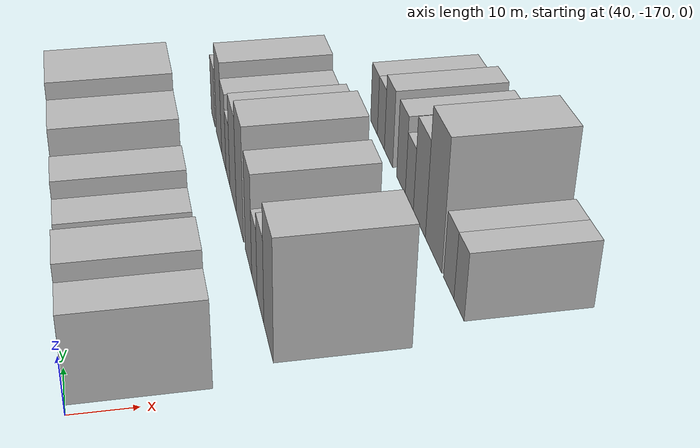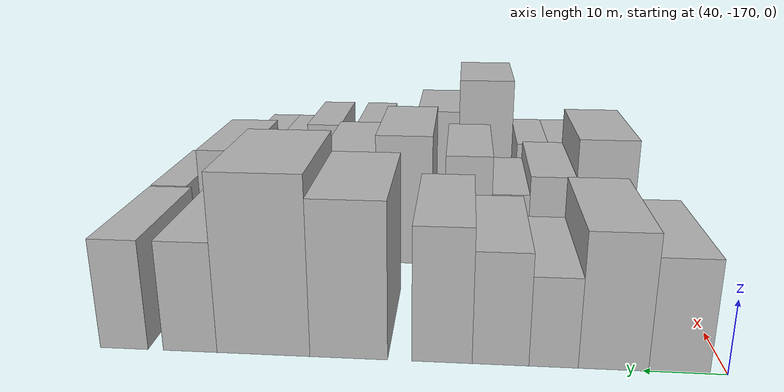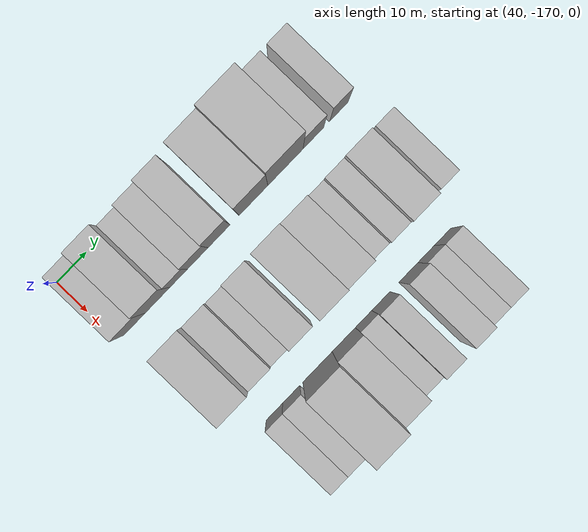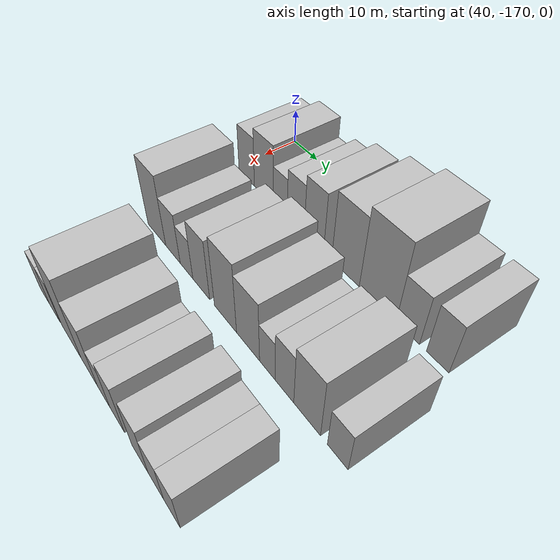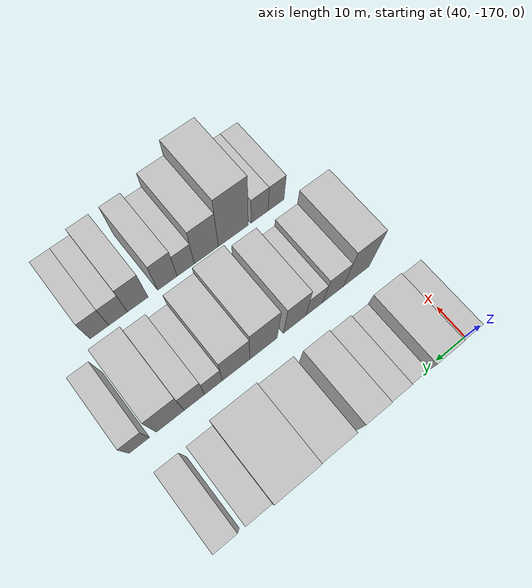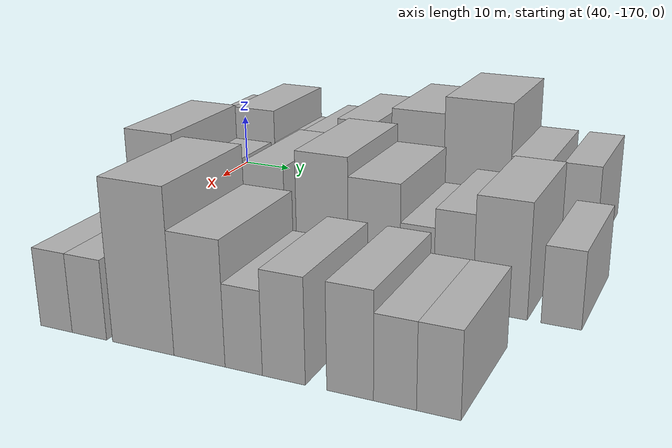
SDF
<sdf version="1.6">
 <world name="default">
  <model name="building_20">
   <static>1</static>
   <pose>50.0000 -164.2807 0 0.000000 0.000000 0.000000</pose>
   <link name="link">
    <pose>0 0 7.50 0 0 0</pose>
    <collision name="collision"><geometry><box><size>20.0000 7.2771 15.0000</size></box></geometry></collision>
    <visual name="visual">
     <cast_shadows>0</cast_shadows>
     <geometry><box><size>20.0000 7.2771 15.0000</size></box></geometry>
     <material>
      <script>
       <uri>model://HANNAS_wall/materials/scripts</uri>
       <uri>model://HANNAS_wall/materials/textures</uri>
       <name>vrc/HANNAS_wall</name>
      </script>
     </material>
    </visual>
   </link>
  </model>
  <model name="building_21">
   <static>1</static>
   <pose>50.0000 -156.4418 0 0.000000 0.000000 0.000000</pose>
   <link name="link">
    <pose>0 0 9.00 0 0 0</pose>
    <collision name="collision"><geometry><box><size>20.0000 8.4006 18.0000</size></box></geometry></collision>
    <visual name="visual">
     <cast_shadows>0</cast_shadows>
     <geometry><box><size>20.0000 8.4006 18.0000</size></box></geometry>
     <material>
      <script>
       <uri>model://HANNAS_wall/materials/scripts</uri>
       <uri>model://HANNAS_wall/materials/textures</uri>
       <name>vrc/HANNAS_wall</name>
      </script>
     </material>
    </visual>
   </link>
  </model>
  <model name="building_22">
   <static>1</static>
   <pose>50.0000 -149.2605 0 0.000000 0.000000 0.000000</pose>
   <link name="link">
    <pose>0 0 6.00 0 0 0</pose>
    <collision name="collision"><geometry><box><size>20.0000 5.9621 12.0000</size></box></geometry></collision>
    <visual name="visual">
     <cast_shadows>0</cast_shadows>
     <geometry><box><size>20.0000 5.9621 12.0000</size></box></geometry>
     <material>
      <script>
       <uri>model://HANNAS_wall/materials/scripts</uri>
       <uri>model://HANNAS_wall/materials/textures</uri>
       <name>vrc/HANNAS_wall</name>
      </script>
     </material>
    </visual>
   </link>
  </model>
  <model name="building_23">
   <static>1</static>
   <pose>50.0000 -142.8116 0 0.000000 0.000000 0.000000</pose>
   <link name="link">
    <pose>0 0 7.50 0 0 0</pose>
    <collision name="collision"><geometry><box><size>20.0000 6.9357 15.0000</size></box></geometry></collision>
    <visual name="visual">
     <cast_shadows>0</cast_shadows>
     <geometry><box><size>20.0000 6.9357 15.0000</size></box></geometry>
     <material>
      <script>
       <uri>model://HANNAS_wall/materials/scripts</uri>
       <uri>model://HANNAS_wall/materials/textures</uri>
       <name>vrc/HANNAS_wall</name>
      </script>
     </material>
    </visual>
   </link>
  </model>
  <model name="building_24">
   <static>1</static>
   <pose>50.0000 -135.6105 0 0.000000 0.000000 0.000000</pose>
   <link name="link">
    <pose>0 0 9.00 0 0 0</pose>
    <collision name="collision"><geometry><box><size>20.0000 7.4665 18.0000</size></box></geometry></collision>
    <visual name="visual">
     <cast_shadows>0</cast_shadows>
     <geometry><box><size>20.0000 7.4665 18.0000</size></box></geometry>
     <material>
      <script>
       <uri>model://HANNAS_wall/materials/scripts</uri>
       <uri>model://HANNAS_wall/materials/textures</uri>
       <name>vrc/HANNAS_wall</name>
      </script>
     </material>
    </visual>
   </link>
  </model>
  <model name="building_25">
   <static>1</static>
   <pose>50.0000 -123.9901 0 0.000000 0.000000 0.000000</pose>
   <link name="link">
    <pose>0 0 10.50 0 0 0</pose>
    <collision name="collision"><geometry><box><size>20.0000 9.7743 21.0000</size></box></geometry></collision>
    <visual name="visual">
     <cast_shadows>0</cast_shadows>
     <geometry><box><size>20.0000 9.7743 21.0000</size></box></geometry>
     <material>
      <script>
       <uri>model://HANNAS_wall/materials/scripts</uri>
       <uri>model://HANNAS_wall/materials/textures</uri>
       <name>vrc/HANNAS_wall</name>
      </script>
     </material>
    </visual>
   </link>
  </model>
  <model name="building_26">
   <static>1</static>
   <pose>50.0000 -113.1574 0 0.000000 0.000000 0.000000</pose>
   <link name="link">
    <pose>0 0 12.00 0 0 0</pose>
    <collision name="collision"><geometry><box><size>20.0000 11.8910 24.0000</size></box></geometry></collision>
    <visual name="visual">
     <cast_shadows>0</cast_shadows>
     <geometry><box><size>20.0000 11.8910 24.0000</size></box></geometry>
     <material>
      <script>
       <uri>model://HANNAS_wall/materials/scripts</uri>
       <uri>model://HANNAS_wall/materials/textures</uri>
       <name>vrc/HANNAS_wall</name>
      </script>
     </material>
    </visual>
   </link>
  </model>
  <model name="building_27">
   <static>1</static>
   <pose>50.0000 -103.7190 0 0.000000 0.000000 0.000000</pose>
   <link name="link">
    <pose>0 0 7.50 0 0 0</pose>
    <collision name="collision"><geometry><box><size>20.0000 6.9859 15.0000</size></box></geometry></collision>
    <visual name="visual">
     <cast_shadows>0</cast_shadows>
     <geometry><box><size>20.0000 6.9859 15.0000</size></box></geometry>
     <material>
      <script>
       <uri>model://HANNAS_wall/materials/scripts</uri>
       <uri>model://HANNAS_wall/materials/textures</uri>
       <name>vrc/HANNAS_wall</name>
      </script>
     </material>
    </visual>
   </link>
  </model>
  <model name="building_28">
   <static>1</static>
   <pose>50.0000 -95.0902 0 0.000000 0.000000 0.000000</pose>
   <link name="link">
    <pose>0 0 7.50 0 0 0</pose>
    <collision name="collision"><geometry><box><size>20.0000 6.2716 15.0000</size></box></geometry></collision>
    <visual name="visual">
     <cast_shadows>0</cast_shadows>
     <geometry><box><size>20.0000 6.2716 15.0000</size></box></geometry>
     <material>
      <script>
       <uri>model://HANNAS_wall/materials/scripts</uri>
       <uri>model://HANNAS_wall/materials/textures</uri>
       <name>vrc/HANNAS_wall</name>
      </script>
     </material>
    </visual>
   </link>
  </model>
  <model name="building_92">
   <static>1</static>
   <pose>79.0000 -159.4178 0 0.000000 0.000000 0.000000</pose>
   <link name="link">
    <pose>0 0 10.50 0 0 0</pose>
    <collision name="collision"><geometry><box><size>20.0000 8.9684 21.0000</size></box></geometry></collision>
    <visual name="visual">
     <cast_shadows>0</cast_shadows>
     <geometry><box><size>20.0000 8.9684 21.0000</size></box></geometry>
     <material>
      <script>
       <uri>model://HANNAS_wall/materials/scripts</uri>
       <uri>model://HANNAS_wall/materials/textures</uri>
       <name>vrc/HANNAS_wall</name>
      </script>
     </material>
    </visual>
   </link>
  </model>
  <model name="building_93">
   <static>1</static>
   <pose>79.0000 -151.4813 0 0.000000 0.000000 0.000000</pose>
   <link name="link">
    <pose>0 0 7.50 0 0 0</pose>
    <collision name="collision"><geometry><box><size>20.0000 6.9046 15.0000</size></box></geometry></collision>
    <visual name="visual">
     <cast_shadows>0</cast_shadows>
     <geometry><box><size>20.0000 6.9046 15.0000</size></box></geometry>
     <material>
      <script>
       <uri>model://HANNAS_wall/materials/scripts</uri>
       <uri>model://HANNAS_wall/materials/textures</uri>
       <name>vrc/HANNAS_wall</name>
      </script>
     </material>
    </visual>
   </link>
  </model>
  <model name="building_94">
   <static>1</static>
   <pose>79.0000 -145.1459 0 0.000000 0.000000 0.000000</pose>
   <link name="link">
    <pose>0 0 6.00 0 0 0</pose>
    <collision name="collision"><geometry><box><size>20.0000 5.7663 12.0000</size></box></geometry></collision>
    <visual name="visual">
     <cast_shadows>0</cast_shadows>
     <geometry><box><size>20.0000 5.7663 12.0000</size></box></geometry>
     <material>
      <script>
       <uri>model://HANNAS_wall/materials/scripts</uri>
       <uri>model://HANNAS_wall/materials/textures</uri>
       <name>vrc/HANNAS_wall</name>
      </script>
     </material>
    </visual>
   </link>
  </model>
  <model name="building_95">
   <static>1</static>
   <pose>79.0000 -138.6442 0 0.000000 0.000000 0.000000</pose>
   <link name="link">
    <pose>0 0 9.00 0 0 0</pose>
    <collision name="collision"><geometry><box><size>20.0000 7.2369 18.0000</size></box></geometry></collision>
    <visual name="visual">
     <cast_shadows>0</cast_shadows>
     <geometry><box><size>20.0000 7.2369 18.0000</size></box></geometry>
     <material>
      <script>
       <uri>model://HANNAS_wall/materials/scripts</uri>
       <uri>model://HANNAS_wall/materials/textures</uri>
       <name>vrc/HANNAS_wall</name>
      </script>
     </material>
    </visual>
   </link>
  </model>
  <model name="building_96">
   <static>1</static>
   <pose>79.0000 -128.6386 0 0.000000 0.000000 0.000000</pose>
   <link name="link">
    <pose>0 0 10.50 0 0 0</pose>
    <collision name="collision"><geometry><box><size>20.0000 8.7743 21.0000</size></box></geometry></collision>
    <visual name="visual">
     <cast_shadows>0</cast_shadows>
     <geometry><box><size>20.0000 8.7743 21.0000</size></box></geometry>
     <material>
      <script>
       <uri>model://HANNAS_wall/materials/scripts</uri>
       <uri>model://HANNAS_wall/materials/textures</uri>
       <name>vrc/HANNAS_wall</name>
      </script>
     </material>
    </visual>
   </link>
  </model>
  <model name="building_97">
   <static>1</static>
   <pose>79.0000 -120.0052 0 0.000000 0.000000 0.000000</pose>
   <link name="link">
    <pose>0 0 9.00 0 0 0</pose>
    <collision name="collision"><geometry><box><size>20.0000 8.4926 18.0000</size></box></geometry></collision>
    <visual name="visual">
     <cast_shadows>0</cast_shadows>
     <geometry><box><size>20.0000 8.4926 18.0000</size></box></geometry>
     <material>
      <script>
       <uri>model://HANNAS_wall/materials/scripts</uri>
       <uri>model://HANNAS_wall/materials/textures</uri>
       <name>vrc/HANNAS_wall</name>
      </script>
     </material>
    </visual>
   </link>
  </model>
  <model name="building_98">
   <static>1</static>
   <pose>79.0000 -113.0529 0 0.000000 0.000000 0.000000</pose>
   <link name="link">
    <pose>0 0 6.00 0 0 0</pose>
    <collision name="collision"><geometry><box><size>20.0000 5.4120 12.0000</size></box></geometry></collision>
    <visual name="visual">
     <cast_shadows>0</cast_shadows>
     <geometry><box><size>20.0000 5.4120 12.0000</size></box></geometry>
     <material>
      <script>
       <uri>model://HANNAS_wall/materials/scripts</uri>
       <uri>model://HANNAS_wall/materials/textures</uri>
       <name>vrc/HANNAS_wall</name>
      </script>
     </material>
    </visual>
   </link>
  </model>
  <model name="building_99">
   <static>1</static>
   <pose>79.0000 -107.2950 0 0.000000 0.000000 0.000000</pose>
   <link name="link">
    <pose>0 0 7.50 0 0 0</pose>
    <collision name="collision"><geometry><box><size>20.0000 6.1037 15.0000</size></box></geometry></collision>
    <visual name="visual">
     <cast_shadows>0</cast_shadows>
     <geometry><box><size>20.0000 6.1037 15.0000</size></box></geometry>
     <material>
      <script>
       <uri>model://HANNAS_wall/materials/scripts</uri>
       <uri>model://HANNAS_wall/materials/textures</uri>
       <name>vrc/HANNAS_wall</name>
      </script>
     </material>
    </visual>
   </link>
  </model>
  <model name="building_100">
   <static>1</static>
   <pose>79.0000 -100.1335 0 0.000000 0.000000 0.000000</pose>
   <link name="link">
    <pose>0 0 9.00 0 0 0</pose>
    <collision name="collision"><geometry><box><size>20.0000 8.2194 18.0000</size></box></geometry></collision>
    <visual name="visual">
     <cast_shadows>0</cast_shadows>
     <geometry><box><size>20.0000 8.2194 18.0000</size></box></geometry>
     <material>
      <script>
       <uri>model://HANNAS_wall/materials/scripts</uri>
       <uri>model://HANNAS_wall/materials/textures</uri>
       <name>vrc/HANNAS_wall</name>
      </script>
     </material>
    </visual>
   </link>
  </model>
  <model name="building_101">
   <static>1</static>
   <pose>79.0000 -91.0988 0 0.000000 0.000000 0.000000</pose>
   <link name="link">
    <pose>0 0 6.00 0 0 0</pose>
    <collision name="collision"><geometry><box><size>20.0000 5.8499 12.0000</size></box></geometry></collision>
    <visual name="visual">
     <cast_shadows>0</cast_shadows>
     <geometry><box><size>20.0000 5.8499 12.0000</size></box></geometry>
     <material>
      <script>
       <uri>model://HANNAS_wall/materials/scripts</uri>
       <uri>model://HANNAS_wall/materials/textures</uri>
       <name>vrc/HANNAS_wall</name>
      </script>
     </material>
    </visual>
   </link>
  </model>
  <model name="building_167">
   <static>1</static>
   <pose>108.0000 -156.4168 0 0.000000 0.000000 0.000000</pose>
   <link name="link">
    <pose>0 0 6.00 0 0 0</pose>
    <collision name="collision"><geometry><box><size>20.0000 5.5181 12.0000</size></box></geometry></collision>
    <visual name="visual">
     <cast_shadows>0</cast_shadows>
     <geometry><box><size>20.0000 5.5181 12.0000</size></box></geometry>
     <material>
      <script>
       <uri>model://HANNAS_wall/materials/scripts</uri>
       <uri>model://HANNAS_wall/materials/textures</uri>
       <name>vrc/HANNAS_wall</name>
      </script>
     </material>
    </visual>
   </link>
  </model>
  <model name="building_168">
   <static>1</static>
   <pose>108.0000 -150.7217 0 0.000000 0.000000 0.000000</pose>
   <link name="link">
    <pose>0 0 6.00 0 0 0</pose>
    <collision name="collision"><geometry><box><size>20.0000 5.8722 12.0000</size></box></geometry></collision>
    <visual name="visual">
     <cast_shadows>0</cast_shadows>
     <geometry><box><size>20.0000 5.8722 12.0000</size></box></geometry>
     <material>
      <script>
       <uri>model://HANNAS_wall/materials/scripts</uri>
       <uri>model://HANNAS_wall/materials/textures</uri>
       <name>vrc/HANNAS_wall</name>
      </script>
     </material>
    </visual>
   </link>
  </model>
  <model name="building_169">
   <static>1</static>
   <pose>108.0000 -141.7927 0 0.000000 0.000000 0.000000</pose>
   <link name="link">
    <pose>0 0 12.00 0 0 0</pose>
    <collision name="collision"><geometry><box><size>20.0000 9.9857 24.0000</size></box></geometry></collision>
    <visual name="visual">
     <cast_shadows>0</cast_shadows>
     <geometry><box><size>20.0000 9.9857 24.0000</size></box></geometry>
     <material>
      <script>
       <uri>model://HANNAS_wall/materials/scripts</uri>
       <uri>model://HANNAS_wall/materials/textures</uri>
       <name>vrc/HANNAS_wall</name>
      </script>
     </material>
    </visual>
   </link>
  </model>
  <model name="building_170">
   <static>1</static>
   <pose>108.0000 -132.8439 0 0.000000 0.000000 0.000000</pose>
   <link name="link">
    <pose>0 0 9.00 0 0 0</pose>
    <collision name="collision"><geometry><box><size>20.0000 7.9119 18.0000</size></box></geometry></collision>
    <visual name="visual">
     <cast_shadows>0</cast_shadows>
     <geometry><box><size>20.0000 7.9119 18.0000</size></box></geometry>
     <material>
      <script>
       <uri>model://HANNAS_wall/materials/scripts</uri>
       <uri>model://HANNAS_wall/materials/textures</uri>
       <name>vrc/HANNAS_wall</name>
      </script>
     </material>
    </visual>
   </link>
  </model>
  <model name="building_171">
   <static>1</static>
   <pose>108.0000 -126.1063 0 0.000000 0.000000 0.000000</pose>
   <link name="link">
    <pose>0 0 6.00 0 0 0</pose>
    <collision name="collision"><geometry><box><size>20.0000 5.5632 12.0000</size></box></geometry></collision>
    <visual name="visual">
     <cast_shadows>0</cast_shadows>
     <geometry><box><size>20.0000 5.5632 12.0000</size></box></geometry>
     <material>
      <script>
       <uri>model://HANNAS_wall/materials/scripts</uri>
       <uri>model://HANNAS_wall/materials/textures</uri>
       <name>vrc/HANNAS_wall</name>
      </script>
     </material>
    </visual>
   </link>
  </model>
  <model name="building_172">
   <static>1</static>
   <pose>108.0000 -120.2344 0 0.000000 0.000000 0.000000</pose>
   <link name="link">
    <pose>0 0 7.50 0 0 0</pose>
    <collision name="collision"><geometry><box><size>20.0000 6.1807 15.0000</size></box></geometry></collision>
    <visual name="visual">
     <cast_shadows>0</cast_shadows>
     <geometry><box><size>20.0000 6.1807 15.0000</size></box></geometry>
     <material>
      <script>
       <uri>model://HANNAS_wall/materials/scripts</uri>
       <uri>model://HANNAS_wall/materials/textures</uri>
       <name>vrc/HANNAS_wall</name>
      </script>
     </material>
    </visual>
   </link>
  </model>
  <model name="building_173">
   <static>1</static>
   <pose>108.0000 -110.9515 0 0.000000 0.000000 0.000000</pose>
   <link name="link">
    <pose>0 0 7.50 0 0 0</pose>
    <collision name="collision"><geometry><box><size>20.0000 6.3850 15.0000</size></box></geometry></collision>
    <visual name="visual">
     <cast_shadows>0</cast_shadows>
     <geometry><box><size>20.0000 6.3850 15.0000</size></box></geometry>
     <material>
      <script>
       <uri>model://HANNAS_wall/materials/scripts</uri>
       <uri>model://HANNAS_wall/materials/textures</uri>
       <name>vrc/HANNAS_wall</name>
      </script>
     </material>
    </visual>
   </link>
  </model>
  <model name="building_174">
   <static>1</static>
   <pose>108.0000 -104.9263 0 0.000000 0.000000 0.000000</pose>
   <link name="link">
    <pose>0 0 6.00 0 0 0</pose>
    <collision name="collision"><geometry><box><size>20.0000 5.6656 12.0000</size></box></geometry></collision>
    <visual name="visual">
     <cast_shadows>0</cast_shadows>
     <geometry><box><size>20.0000 5.6656 12.0000</size></box></geometry>
     <material>
      <script>
       <uri>model://HANNAS_wall/materials/scripts</uri>
       <uri>model://HANNAS_wall/materials/textures</uri>
       <name>vrc/HANNAS_wall</name>
      </script>
     </material>
    </visual>
   </link>
  </model>
  <model name="building_175">
   <static>1</static>
   <pose>108.0000 -99.2547 0 0.000000 0.000000 0.000000</pose>
   <link name="link">
    <pose>0 0 6.00 0 0 0</pose>
    <collision name="collision"><geometry><box><size>20.0000 5.6776 12.0000</size></box></geometry></collision>
    <visual name="visual">
     <cast_shadows>0</cast_shadows>
     <geometry><box><size>20.0000 5.6776 12.0000</size></box></geometry>
     <material>
      <script>
       <uri>model://HANNAS_wall/materials/scripts</uri>
       <uri>model://HANNAS_wall/materials/textures</uri>
       <name>vrc/HANNAS_wall</name>
      </script>
     </material>
    </visual>
   </link>
  </model>
 </world>
</sdf>
